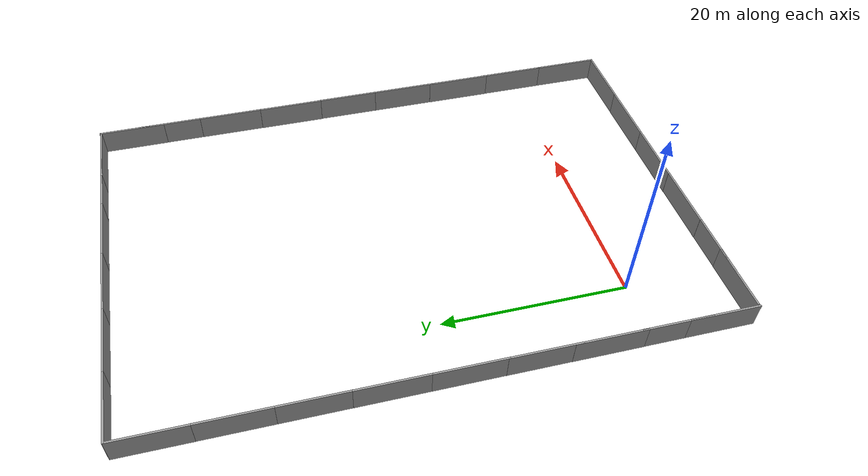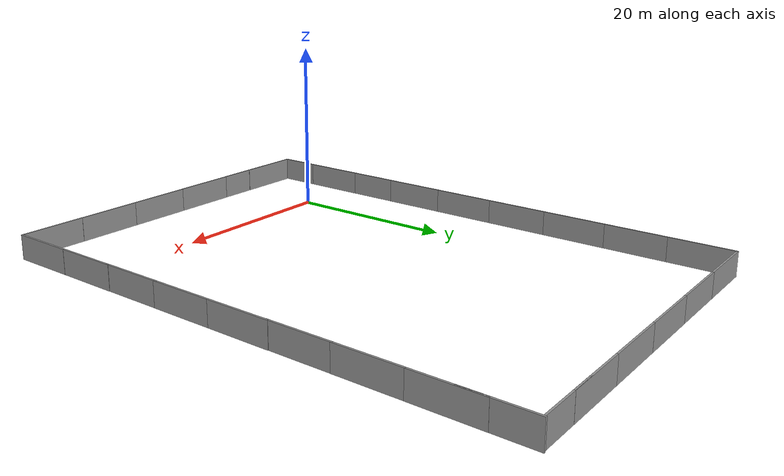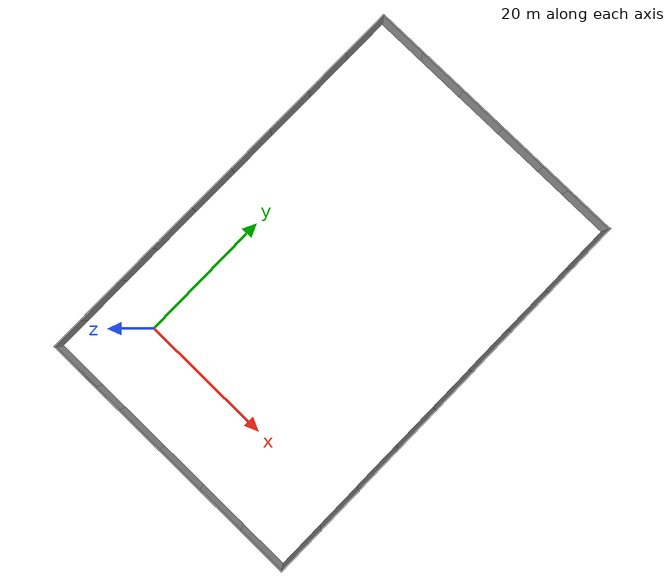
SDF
<sdf version="1.7">
 <world name="default">
  <gravity>0 0 -9.8</gravity>
  <physics name="default_physics" default="0" type="ode">
   <max_step_size>0.001</max_step_size>
   <real_time_factor>1</real_time_factor>
   <real_time_update_rate>1000</real_time_update_rate>
  </physics>
  <light name="Warehouse_CeilingLight_003" type="point">
   <pose>0 0 9 0 -0 0</pose>
   <diffuse>0.5 0.5 0.5 1</diffuse>
   <specular>0.2 0.2 0.2 1</specular>
   <attenuation>
    <range>80</range>
    <constant>0.3</constant>
    <linear>0.01</linear>
    <quadratic>0.001</quadratic>
   </attenuation>
   <direction>0.1 0.1 -1</direction>
   <spot><inner_angle>0</inner_angle><outer_angle>0</outer_angle><falloff>0</falloff></spot>
  </light>
  <magnetic_field>6e-06 2.3e-05 -4.2e-05</magnetic_field>
  <atmosphere type="adiabatic"/>
  <scene><ambient>0.4 0.4 0.4 1</ambient><background>0.7 0.7 0.7 1</background><shadows>1</shadows></scene>
  <audio><device>default</device></audio>
  <spherical_coordinates>
   <surface_model>EARTH_WGS84</surface_model>
   <latitude_deg>0</latitude_deg>
   <longitude_deg>0</longitude_deg>
   <elevation>0</elevation>
   <heading_deg>0</heading_deg>
  </spherical_coordinates>
  <light name="user_point_light_0" type="point">
   <pose>4.24341 42.2777 1 0 -0 0</pose>
   <diffuse>0.5 0.5 0.5 1</diffuse>
   <specular>0.1 0.1 0.1 1</specular>
   <attenuation>
    <range>20</range>
    <constant>0.5</constant>
    <linear>0.01</linear>
    <quadratic>0.001</quadratic>
   </attenuation>
   <cast_shadows>0</cast_shadows>
   <direction>0 0 -1</direction>
   <spot><inner_angle>0</inner_angle><outer_angle>0</outer_angle><falloff>0</falloff></spot>
  </light>
  <light name="user_directional_light_1" type="directional">
   <pose>-5.4393 51.7755 1 0 -0 0</pose>
   <diffuse>0.5 0.5 0.5 1</diffuse>
   <specular>0.1 0.1 0.1 1</specular>
   <direction>0.1 0.1 -0.9</direction>
   <attenuation>
    <range>20</range>
    <constant>0.5</constant>
    <linear>0.01</linear>
    <quadratic>0.001</quadratic>
   </attenuation>
   <spot><inner_angle>0</inner_angle><outer_angle>0</outer_angle><falloff>0</falloff></spot>
  </light>
  <light name="user_directional_light_2" type="directional">
   <pose>-5.43883 51.7909 1 0 -0 0</pose>
   <diffuse>0.5 0.5 0.5 1</diffuse>
   <specular>0.1 0.1 0.1 1</specular>
   <direction>0.1 0.1 -0.9</direction>
   <attenuation>
    <range>20</range>
    <constant>0.5</constant>
    <linear>0.01</linear>
    <quadratic>0.001</quadratic>
   </attenuation>
   <spot><inner_angle>0</inner_angle><outer_angle>0</outer_angle><falloff>0</falloff></spot>
  </light>
  <light name="user_directional_light_3" type="directional">
   <pose>-5.43363 51.7761 1 0 -0 0</pose>
   <diffuse>0.5 0.5 0.5 1</diffuse>
   <specular>0.1 0.1 0.1 1</specular>
   <direction>0.1 0.1 -0.9</direction>
   <attenuation>
    <range>20</range>
    <constant>0.5</constant>
    <linear>0.01</linear>
    <quadratic>0.001</quadratic>
   </attenuation>
   <spot><inner_angle>0</inner_angle><outer_angle>0</outer_angle><falloff>0</falloff></spot>
  </light>
  <light name="user_directional_light_4" type="directional">
   <pose>-5.43363 51.7761 1 0 -0 0</pose>
   <diffuse>0.5 0.5 0.5 1</diffuse>
   <specular>0.1 0.1 0.1 1</specular>
   <direction>0.1 0.1 -0.9</direction>
   <attenuation>
    <range>20</range>
    <constant>0.5</constant>
    <linear>0.01</linear>
    <quadratic>0.001</quadratic>
   </attenuation>
   <spot><inner_angle>0</inner_angle><outer_angle>0</outer_angle><falloff>0</falloff></spot>
  </light>
  <light name="user_directional_light_5" type="directional">
   <pose>-5.43957 51.7683 1 0 -0 0</pose>
   <diffuse>0.5 0.5 0.5 1</diffuse>
   <specular>0.1 0.1 0.1 1</specular>
   <direction>0.1 0.1 -0.9</direction>
   <attenuation>
    <range>20</range>
    <constant>0.5</constant>
    <linear>0.01</linear>
    <quadratic>0.001</quadratic>
   </attenuation>
   <spot><inner_angle>0</inner_angle><outer_angle>0</outer_angle><falloff>0</falloff></spot>
  </light>
  <light name="user_directional_light_6" type="directional">
   <pose>-5.42678 51.8136 1 0 -0 0</pose>
   <diffuse>0.5 0.5 0.5 1</diffuse>
   <specular>0.1 0.1 0.1 1</specular>
   <direction>0.1 0.1 -0.9</direction>
   <attenuation>
    <range>20</range>
    <constant>0.5</constant>
    <linear>0.01</linear>
    <quadratic>0.001</quadratic>
   </attenuation>
   <spot><inner_angle>0</inner_angle><outer_angle>0</outer_angle><falloff>0</falloff></spot>
  </light>
  <light name="user_directional_light_7" type="directional">
   <pose>-5.43864 51.7989 1 0 -0 0</pose>
   <diffuse>0.5 0.5 0.5 1</diffuse>
   <specular>0.1 0.1 0.1 1</specular>
   <direction>0.1 0.1 -0.9</direction>
   <attenuation>
    <range>20</range>
    <constant>0.5</constant>
    <linear>0.01</linear>
    <quadratic>0.001</quadratic>
   </attenuation>
   <spot><inner_angle>0</inner_angle><outer_angle>0</outer_angle><falloff>0</falloff></spot>
  </light>
  <model name="grey_wall">
   <static>1</static>
   <link name="link">
    <pose>0 0 1.4 0 -0 0</pose>
    <collision name="collision"><geometry><box><size>7.5 0.2 2.8</size></box></geometry></collision>
    <visual name="visual">
     <cast_shadows>0</cast_shadows>
     <geometry><box><size>7.5 0.2 2.8</size></box></geometry>
     <material>
      <script>
       <uri>model://grey_wall/materials/scripts</uri>
       <uri>model://grey_wall/materials/textures</uri>
       <name>vrc/grey_wall</name>
      </script>
     </material>
    </visual>
   </link>
   <pose>30.8525 -10.2922 0 0 -0 0</pose>
  </model>
  <model name="grey_wall_clone">
   <static>1</static>
   <link name="link">
    <pose>0 0 1.4 0 -0 0</pose>
    <collision name="collision"><geometry><box><size>7.5 0.2 2.8</size></box></geometry></collision>
    <visual name="visual">
     <cast_shadows>0</cast_shadows>
     <geometry><box><size>7.5 0.2 2.8</size></box></geometry>
     <material>
      <script>
       <uri>model://grey_wall/materials/scripts</uri>
       <uri>model://grey_wall/materials/textures</uri>
       <name>vrc/grey_wall</name>
      </script>
     </material>
    </visual>
   </link>
   <pose>23.3936 -10.2777 0 0 -0 0</pose>
  </model>
  <model name="grey_wall_clone_0">
   <static>1</static>
   <link name="link">
    <pose>0 0 1.4 0 -0 0</pose>
    <collision name="collision"><geometry><box><size>7.5 0.2 2.8</size></box></geometry></collision>
    <visual name="visual">
     <cast_shadows>0</cast_shadows>
     <geometry><box><size>7.5 0.2 2.8</size></box></geometry>
     <material>
      <script>
       <uri>model://grey_wall/materials/scripts</uri>
       <uri>model://grey_wall/materials/textures</uri>
       <name>vrc/grey_wall</name>
      </script>
     </material>
    </visual>
   </link>
   <pose>15.9968 -10.2797 0 0 -0 0</pose>
  </model>
  <model name="grey_wall_clone_1">
   <static>1</static>
   <link name="link">
    <pose>0 0 1.4 0 -0 0</pose>
    <collision name="collision"><geometry><box><size>7.5 0.2 2.8</size></box></geometry></collision>
    <visual name="visual">
     <cast_shadows>0</cast_shadows>
     <geometry><box><size>7.5 0.2 2.8</size></box></geometry>
     <material>
      <script>
       <uri>model://grey_wall/materials/scripts</uri>
       <uri>model://grey_wall/materials/textures</uri>
       <name>vrc/grey_wall</name>
      </script>
     </material>
    </visual>
   </link>
   <pose>8.54316 -10.296 0 0 -0 0</pose>
  </model>
  <model name="grey_wall_clone_2">
   <static>1</static>
   <link name="link">
    <pose>0 0 1.4 0 -0 0</pose>
    <collision name="collision"><geometry><box><size>7.5 0.2 2.8</size></box></geometry></collision>
    <visual name="visual">
     <cast_shadows>0</cast_shadows>
     <geometry><box><size>7.5 0.2 2.8</size></box></geometry>
     <material>
      <script>
       <uri>model://grey_wall/materials/scripts</uri>
       <uri>model://grey_wall/materials/textures</uri>
       <name>vrc/grey_wall</name>
      </script>
     </material>
    </visual>
   </link>
   <pose>1.06947 -10.3134 0 0 -0 0</pose>
  </model>
  <model name="grey_wall_clone_3">
   <static>1</static>
   <link name="link">
    <pose>0 0 1.4 0 -0 0</pose>
    <collision name="collision"><geometry><box><size>7.5 0.2 2.8</size></box></geometry></collision>
    <visual name="visual">
     <cast_shadows>0</cast_shadows>
     <geometry><box><size>7.5 0.2 2.8</size></box></geometry>
     <material>
      <script>
       <uri>model://grey_wall/materials/scripts</uri>
       <uri>model://grey_wall/materials/textures</uri>
       <name>vrc/grey_wall</name>
      </script>
     </material>
    </visual>
   </link>
   <pose>-3.28973 -10.2964 0 0 -0 0</pose>
  </model>
  <model name="grey_wall_clone_4">
   <static>1</static>
   <link name="link">
    <pose>0 0 1.4 0 -0 0</pose>
    <collision name="collision"><geometry><box><size>7.5 0.2 2.8</size></box></geometry></collision>
    <visual name="visual">
     <cast_shadows>0</cast_shadows>
     <geometry><box><size>7.5 0.2 2.8</size></box></geometry>
     <material>
      <script>
       <uri>model://grey_wall/materials/scripts</uri>
       <uri>model://grey_wall/materials/textures</uri>
       <name>vrc/grey_wall</name>
      </script>
     </material>
    </visual>
   </link>
   <pose>-3.39267 52.1437 0 0 -0 0</pose>
  </model>
  <model name="grey_wall_clone_5">
   <static>1</static>
   <link name="link">
    <pose>0 0 1.4 0 -0 0</pose>
    <collision name="collision"><geometry><box><size>7.5 0.2 2.8</size></box></geometry></collision>
    <visual name="visual">
     <cast_shadows>0</cast_shadows>
     <geometry><box><size>7.5 0.2 2.8</size></box></geometry>
     <material>
      <script>
       <uri>model://grey_wall/materials/scripts</uri>
       <uri>model://grey_wall/materials/textures</uri>
       <name>vrc/grey_wall</name>
      </script>
     </material>
    </visual>
   </link>
   <pose>4.05088 52.1452 0 0 -0 0</pose>
  </model>
  <model name="grey_wall_clone_5_clone">
   <static>1</static>
   <link name="link">
    <pose>0 0 1.4 0 -0 0</pose>
    <collision name="collision"><geometry><box><size>7.5 0.2 2.8</size></box></geometry></collision>
    <visual name="visual">
     <cast_shadows>0</cast_shadows>
     <geometry><box><size>7.5 0.2 2.8</size></box></geometry>
     <material>
      <script>
       <uri>model://grey_wall/materials/scripts</uri>
       <uri>model://grey_wall/materials/textures</uri>
       <name>vrc/grey_wall</name>
      </script>
     </material>
    </visual>
   </link>
   <pose>11.4741 52.1508 0 0 -0 0</pose>
  </model>
  <model name="grey_wall_clone_5_clone_0">
   <static>1</static>
   <link name="link">
    <pose>0 0 1.4 0 -0 0</pose>
    <collision name="collision"><geometry><box><size>7.5 0.2 2.8</size></box></geometry></collision>
    <visual name="visual">
     <cast_shadows>0</cast_shadows>
     <geometry><box><size>7.5 0.2 2.8</size></box></geometry>
     <material>
      <script>
       <uri>model://grey_wall/materials/scripts</uri>
       <uri>model://grey_wall/materials/textures</uri>
       <name>vrc/grey_wall</name>
      </script>
     </material>
    </visual>
   </link>
   <pose>18.9232 52.149 0 0 -0 0</pose>
  </model>
  <model name="grey_wall_clone_5_clone_1">
   <static>1</static>
   <link name="link">
    <pose>0 0 1.4 0 -0 0</pose>
    <collision name="collision"><geometry><box><size>7.5 0.2 2.8</size></box></geometry></collision>
    <visual name="visual">
     <cast_shadows>0</cast_shadows>
     <geometry><box><size>7.5 0.2 2.8</size></box></geometry>
     <material>
      <script>
       <uri>model://grey_wall/materials/scripts</uri>
       <uri>model://grey_wall/materials/textures</uri>
       <name>vrc/grey_wall</name>
      </script>
     </material>
    </visual>
   </link>
   <pose>26.3756 52.1496 0 0 -0 0</pose>
  </model>
  <model name="grey_wall_clone_5_clone_2">
   <static>1</static>
   <link name="link">
    <pose>0 0 1.4 0 -0 0</pose>
    <collision name="collision"><geometry><box><size>7.5 0.2 2.8</size></box></geometry></collision>
    <visual name="visual">
     <cast_shadows>0</cast_shadows>
     <geometry><box><size>7.5 0.2 2.8</size></box></geometry>
     <material>
      <script>
       <uri>model://grey_wall/materials/scripts</uri>
       <uri>model://grey_wall/materials/textures</uri>
       <name>vrc/grey_wall</name>
      </script>
     </material>
    </visual>
   </link>
   <pose>31.0034 52.1444 0 0 -0 0</pose>
  </model>
  <model name="grey_wall_clone_6">
   <static>1</static>
   <link name="link">
    <pose>0 0 1.4 0 -0 0</pose>
    <collision name="collision"><geometry><box><size>7.5 0.2 2.8</size></box></geometry></collision>
    <visual name="visual">
     <cast_shadows>0</cast_shadows>
     <geometry><box><size>7.5 0.2 2.8</size></box></geometry>
     <material>
      <script>
       <uri>model://grey_wall/materials/scripts</uri>
       <uri>model://grey_wall/materials/textures</uri>
       <name>vrc/grey_wall</name>
      </script>
     </material>
    </visual>
   </link>
   <pose>34.6905 -6.63056 0 0 0 -1.57288</pose>
  </model>
  <model name="grey_wall_clone_6_clone">
   <static>1</static>
   <link name="link">
    <pose>0 0 1.4 0 -0 0</pose>
    <collision name="collision"><geometry><box><size>7.5 0.2 2.8</size></box></geometry></collision>
    <visual name="visual">
     <cast_shadows>0</cast_shadows>
     <geometry><box><size>7.5 0.2 2.8</size></box></geometry>
     <material>
      <script>
       <uri>model://grey_wall/materials/scripts</uri>
       <uri>model://grey_wall/materials/textures</uri>
       <name>vrc/grey_wall</name>
      </script>
     </material>
    </visual>
   </link>
   <pose>34.6963 0.735582 0 0 0 -1.57288</pose>
  </model>
  <model name="grey_wall_clone_6_clone_0">
   <static>1</static>
   <link name="link">
    <pose>0 0 1.4 0 -0 0</pose>
    <collision name="collision"><geometry><box><size>7.5 0.2 2.8</size></box></geometry></collision>
    <visual name="visual">
     <cast_shadows>0</cast_shadows>
     <geometry><box><size>7.5 0.2 2.8</size></box></geometry>
     <material>
      <script>
       <uri>model://grey_wall/materials/scripts</uri>
       <uri>model://grey_wall/materials/textures</uri>
       <name>vrc/grey_wall</name>
      </script>
     </material>
    </visual>
   </link>
   <pose>34.684 7.89009 0 0 0 -1.57288</pose>
  </model>
  <model name="grey_wall_clone_6_clone_1">
   <static>1</static>
   <link name="link">
    <pose>0 0 1.4 0 -0 0</pose>
    <collision name="collision"><geometry><box><size>7.5 0.2 2.8</size></box></geometry></collision>
    <visual name="visual">
     <cast_shadows>0</cast_shadows>
     <geometry><box><size>7.5 0.2 2.8</size></box></geometry>
     <material>
      <script>
       <uri>model://grey_wall/materials/scripts</uri>
       <uri>model://grey_wall/materials/textures</uri>
       <name>vrc/grey_wall</name>
      </script>
     </material>
    </visual>
   </link>
   <pose>34.7086 15.0116 0 0 0 -1.57288</pose>
  </model>
  <model name="grey_wall_clone_6_clone_2">
   <static>1</static>
   <link name="link">
    <pose>0 0 1.4 0 -0 0</pose>
    <collision name="collision"><geometry><box><size>7.5 0.2 2.8</size></box></geometry></collision>
    <visual name="visual">
     <cast_shadows>0</cast_shadows>
     <geometry><box><size>7.5 0.2 2.8</size></box></geometry>
     <material>
      <script>
       <uri>model://grey_wall/materials/scripts</uri>
       <uri>model://grey_wall/materials/textures</uri>
       <name>vrc/grey_wall</name>
      </script>
     </material>
    </visual>
   </link>
   <pose>34.7265 22.3492 0 0 0 -1.57288</pose>
  </model>
  <model name="grey_wall_clone_6_clone_3">
   <static>1</static>
   <link name="link">
    <pose>0 0 1.4 0 -0 0</pose>
    <collision name="collision"><geometry><box><size>7.5 0.2 2.8</size></box></geometry></collision>
    <visual name="visual">
     <cast_shadows>0</cast_shadows>
     <geometry><box><size>7.5 0.2 2.8</size></box></geometry>
     <material>
      <script>
       <uri>model://grey_wall/materials/scripts</uri>
       <uri>model://grey_wall/materials/textures</uri>
       <name>vrc/grey_wall</name>
      </script>
     </material>
    </visual>
   </link>
   <pose>34.7042 29.4389 0 0 0 -1.57288</pose>
  </model>
  <model name="grey_wall_clone_6_clone_4">
   <static>1</static>
   <link name="link">
    <pose>0 0 1.4 0 -0 0</pose>
    <collision name="collision"><geometry><box><size>7.5 0.2 2.8</size></box></geometry></collision>
    <visual name="visual">
     <cast_shadows>0</cast_shadows>
     <geometry><box><size>7.5 0.2 2.8</size></box></geometry>
     <material>
      <script>
       <uri>model://grey_wall/materials/scripts</uri>
       <uri>model://grey_wall/materials/textures</uri>
       <name>vrc/grey_wall</name>
      </script>
     </material>
    </visual>
   </link>
   <pose>34.7333 36.7538 0 0 0 -1.57288</pose>
  </model>
  <model name="grey_wall_clone_6_clone_5">
   <static>1</static>
   <link name="link">
    <pose>0 0 1.4 0 -0 0</pose>
    <collision name="collision"><geometry><box><size>7.5 0.2 2.8</size></box></geometry></collision>
    <visual name="visual">
     <cast_shadows>0</cast_shadows>
     <geometry><box><size>7.5 0.2 2.8</size></box></geometry>
     <material>
      <script>
       <uri>model://grey_wall/materials/scripts</uri>
       <uri>model://grey_wall/materials/textures</uri>
       <name>vrc/grey_wall</name>
      </script>
     </material>
    </visual>
   </link>
   <pose>34.7565 44.1085 0 0 0 -1.57288</pose>
  </model>
  <model name="grey_wall_clone_6_clone_6">
   <static>1</static>
   <link name="link">
    <pose>0 0 1.4 0 -0 0</pose>
    <collision name="collision"><geometry><box><size>7.5 0.2 2.8</size></box></geometry></collision>
    <visual name="visual">
     <cast_shadows>0</cast_shadows>
     <geometry><box><size>7.5 0.2 2.8</size></box></geometry>
     <material>
      <script>
       <uri>model://grey_wall/materials/scripts</uri>
       <uri>model://grey_wall/materials/textures</uri>
       <name>vrc/grey_wall</name>
      </script>
     </material>
    </visual>
   </link>
   <pose>34.7542 48.5705 0 0 0 -1.57288</pose>
  </model>
  <model name="grey_wall_clone_6_clone_7">
   <static>1</static>
   <link name="link">
    <pose>0 0 1.4 0 -0 0</pose>
    <collision name="collision"><geometry><box><size>7.5 0.2 2.8</size></box></geometry></collision>
    <visual name="visual">
     <cast_shadows>0</cast_shadows>
     <geometry><box><size>7.5 0.2 2.8</size></box></geometry>
     <material>
      <script>
       <uri>model://grey_wall/materials/scripts</uri>
       <uri>model://grey_wall/materials/textures</uri>
       <name>vrc/grey_wall</name>
      </script>
     </material>
    </visual>
   </link>
   <pose>-7.07896 48.4591 0 0 0 -1.57288</pose>
  </model>
  <model name="grey_wall_clone_6_clone_8">
   <static>1</static>
   <link name="link">
    <pose>0 0 1.4 0 -0 0</pose>
    <collision name="collision"><geometry><box><size>7.5 0.2 2.8</size></box></geometry></collision>
    <visual name="visual">
     <cast_shadows>0</cast_shadows>
     <geometry><box><size>7.5 0.2 2.8</size></box></geometry>
     <material>
      <script>
       <uri>model://grey_wall/materials/scripts</uri>
       <uri>model://grey_wall/materials/textures</uri>
       <name>vrc/grey_wall</name>
      </script>
     </material>
    </visual>
   </link>
   <pose>-7.08612 41.1079 0 0 0 -1.57288</pose>
  </model>
  <model name="grey_wall_clone_6_clone_9">
   <static>1</static>
   <link name="link">
    <pose>0 0 1.4 0 -0 0</pose>
    <collision name="collision"><geometry><box><size>7.5 0.2 2.8</size></box></geometry></collision>
    <visual name="visual">
     <cast_shadows>0</cast_shadows>
     <geometry><box><size>7.5 0.2 2.8</size></box></geometry>
     <material>
      <script>
       <uri>model://grey_wall/materials/scripts</uri>
       <uri>model://grey_wall/materials/textures</uri>
       <name>vrc/grey_wall</name>
      </script>
     </material>
    </visual>
   </link>
   <pose>-7.10063 33.9031 0 0 0 -1.57288</pose>
  </model>
  <model name="grey_wall_clone_6_clone_10">
   <static>1</static>
   <link name="link">
    <pose>0 0 1.4 0 -0 0</pose>
    <collision name="collision"><geometry><box><size>7.5 0.2 2.8</size></box></geometry></collision>
    <visual name="visual">
     <cast_shadows>0</cast_shadows>
     <geometry><box><size>7.5 0.2 2.8</size></box></geometry>
     <material>
      <script>
       <uri>model://grey_wall/materials/scripts</uri>
       <uri>model://grey_wall/materials/textures</uri>
       <name>vrc/grey_wall</name>
      </script>
     </material>
    </visual>
   </link>
   <pose>-7.12237 26.5882 0 0 0 -1.57288</pose>
  </model>
  <model name="grey_wall_clone_6_clone_11">
   <static>1</static>
   <link name="link">
    <pose>0 0 1.4 0 -0 0</pose>
    <collision name="collision"><geometry><box><size>7.5 0.2 2.8</size></box></geometry></collision>
    <visual name="visual">
     <cast_shadows>0</cast_shadows>
     <geometry><box><size>7.5 0.2 2.8</size></box></geometry>
     <material>
      <script>
       <uri>model://grey_wall/materials/scripts</uri>
       <uri>model://grey_wall/materials/textures</uri>
       <name>vrc/grey_wall</name>
      </script>
     </material>
    </visual>
   </link>
   <pose>-7.14149 19.1206 0 0 0 -1.57288</pose>
  </model>
  <model name="grey_wall_clone_6_clone_12">
   <static>1</static>
   <link name="link">
    <pose>0 0 1.4 0 -0 0</pose>
    <collision name="collision"><geometry><box><size>7.5 0.2 2.8</size></box></geometry></collision>
    <visual name="visual">
     <cast_shadows>0</cast_shadows>
     <geometry><box><size>7.5 0.2 2.8</size></box></geometry>
     <material>
      <script>
       <uri>model://grey_wall/materials/scripts</uri>
       <uri>model://grey_wall/materials/textures</uri>
       <name>vrc/grey_wall</name>
      </script>
     </material>
    </visual>
   </link>
   <pose>-7.16807 11.7661 0 0 0 -1.57288</pose>
  </model>
  <model name="grey_wall_clone_6_clone_13">
   <static>1</static>
   <link name="link">
    <pose>0 0 1.4 0 -0 0</pose>
    <collision name="collision"><geometry><box><size>7.5 0.2 2.8</size></box></geometry></collision>
    <visual name="visual">
     <cast_shadows>0</cast_shadows>
     <geometry><box><size>7.5 0.2 2.8</size></box></geometry>
     <material>
      <script>
       <uri>model://grey_wall/materials/scripts</uri>
       <uri>model://grey_wall/materials/textures</uri>
       <name>vrc/grey_wall</name>
      </script>
     </material>
    </visual>
   </link>
   <pose>-7.19657 5.1273 0 0 0 -1.57288</pose>
  </model>
  <model name="grey_wall_clone_6_clone_14">
   <static>1</static>
   <link name="link">
    <pose>0 0 1.4 0 -0 0</pose>
    <collision name="collision"><geometry><box><size>7.5 0.2 2.8</size></box></geometry></collision>
    <visual name="visual">
     <cast_shadows>0</cast_shadows>
     <geometry><box><size>7.5 0.2 2.8</size></box></geometry>
     <material>
      <script>
       <uri>model://grey_wall/materials/scripts</uri>
       <uri>model://grey_wall/materials/textures</uri>
       <name>vrc/grey_wall</name>
      </script>
     </material>
    </visual>
   </link>
   <pose>-7.19951 -1.69425 0 0 0 -1.57288</pose>
  </model>
  <model name="grey_wall_clone_6_clone_15">
   <static>1</static>
   <link name="link">
    <pose>0 0 1.4 0 -0 0</pose>
    <collision name="collision"><geometry><box><size>7.5 0.2 2.8</size></box></geometry></collision>
    <visual name="visual">
     <cast_shadows>0</cast_shadows>
     <geometry><box><size>7.5 0.2 2.8</size></box></geometry>
     <material>
      <script>
       <uri>model://grey_wall/materials/scripts</uri>
       <uri>model://grey_wall/materials/textures</uri>
       <name>vrc/grey_wall</name>
      </script>
     </material>
    </visual>
   </link>
   <pose>-7.21069 -6.70673 0 0 0 -1.57288</pose>
  </model>
 </world>
</sdf>
